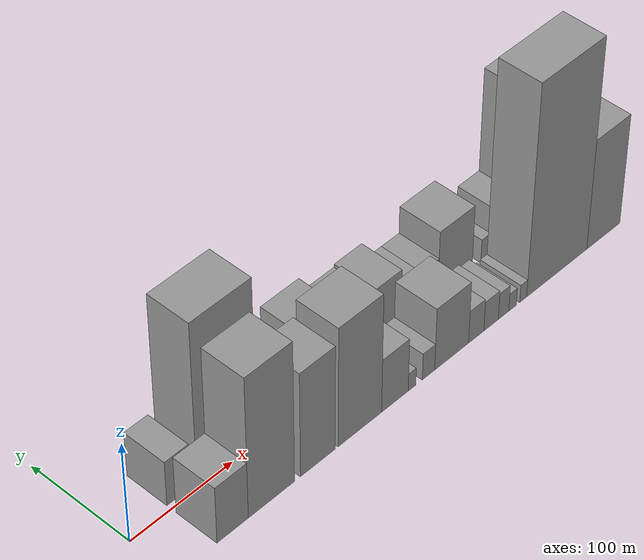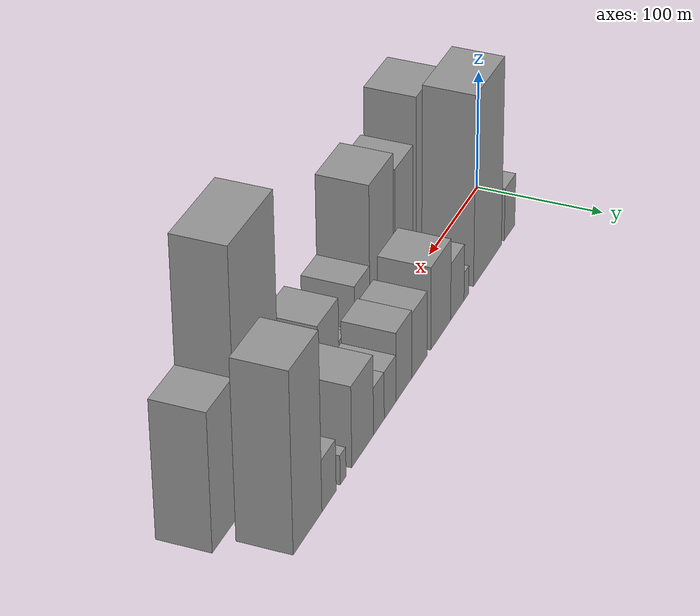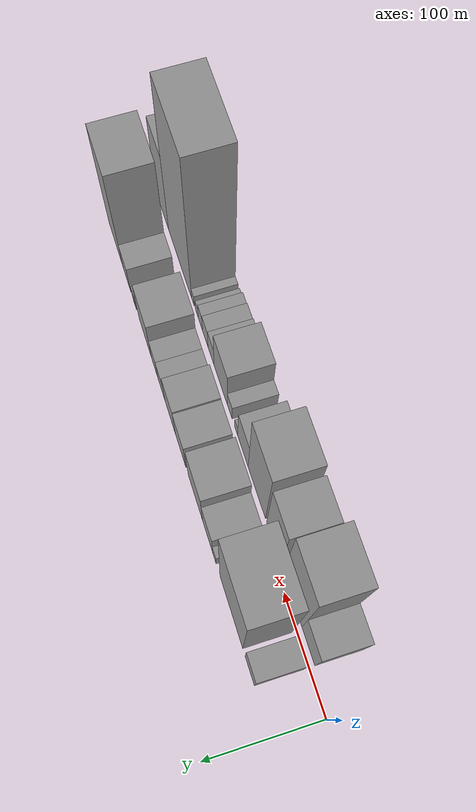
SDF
<sdf version="1.6">
 <world name="default">
  <scene>
   <sky><clouds><speed>12</speed></clouds></sky>
   <ambient>0.4 0.4 0.4 1</ambient>
   <background>0.7 0.7 0.7 1</background>
   <shadows>1</shadows>
  </scene>
  <gravity>0 0 -9.8066</gravity>
  <magnetic_field>6e-06 2.3e-05 -4.2e-05</magnetic_field>
  <physics default="0" name="default_physics" type="ode">
   <ode>
    <solver>
     <type>quick</type>
     <iters>10</iters>
     <sor>1.0</sor>
     <use_dynamic_moi_rescaling>0</use_dynamic_moi_rescaling>
    </solver>
    <constraints>
     <cfm>0</cfm>
     <erp>0.2</erp>
     <contact_max_correcting_vel>100</contact_max_correcting_vel>
     <contact_surface_layer>0.001</contact_surface_layer>
    </constraints>
   </ode>
   <max_step_size>0.004</max_step_size>
   <real_time_factor>1</real_time_factor>
   <real_time_update_rate>250</real_time_update_rate>
  </physics>
  <light name="sun" type="directional">
   <pose>0 0 10 0 0 0</pose>
   <diffuse>0.8 0.8 0.8 1</diffuse>
   <specular>0.2 0.2 0.2 1</specular>
   <attenuation>
    <range>1000</range>
    <constant>0.9</constant>
    <linear>0.01</linear>
    <quadratic>0.001</quadratic>
   </attenuation>
   <direction>-0.5 0.1 -0.9</direction>
  </light>
  <model name="building_1">
   <static>1</static>
   <pose>51.5358 24.5000 0 0.000000 0.000000 1.570796</pose>
   <link name="link">
    <pose>0 0 22.50 0 0 0</pose>
    <collision name="collision"><geometry><box><size>40.0000 23.0716 45.0000</size></box></geometry></collision>
    <visual name="visual">
     <cast_shadows>0</cast_shadows>
     <geometry><box><size>40.0000 23.0716 45.0000</size></box></geometry>
     <material>
      <script>
       <uri>model://grey_wall/materials/scripts</uri>
       <uri>model://grey_wall/materials/textures</uri>
       <name>vrc/grey_wall</name>
      </script>
     </material>
    </visual>
   </link>
  </model>
  <model name="building_2">
   <static>1</static>
   <pose>98.5969 24.5000 0 0.000000 0.000000 1.570796</pose>
   <link name="link">
    <pose>0 0 79.50 0 0 0</pose>
    <collision name="collision"><geometry><box><size>40.0000 59.0504 159.0000</size></box></geometry></collision>
    <visual name="visual">
     <cast_shadows>0</cast_shadows>
     <geometry><box><size>40.0000 59.0504 159.0000</size></box></geometry>
     <material>
      <script>
       <uri>model://grey_wall/materials/scripts</uri>
       <uri>model://grey_wall/materials/textures</uri>
       <name>vrc/grey_wall</name>
      </script>
     </material>
    </visual>
   </link>
  </model>
  <model name="building_3">
   <static>1</static>
   <pose>142.9371 24.5000 0 0.000000 0.000000 1.570796</pose>
   <link name="link">
    <pose>0 0 12.00 0 0 0</pose>
    <collision name="collision"><geometry><box><size>40.0000 9.6301 24.0000</size></box></geometry></collision>
    <visual name="visual">
     <cast_shadows>0</cast_shadows>
     <geometry><box><size>40.0000 9.6301 24.0000</size></box></geometry>
     <material>
      <script>
       <uri>model://grey_wall/materials/scripts</uri>
       <uri>model://grey_wall/materials/textures</uri>
       <name>vrc/grey_wall</name>
      </script>
     </material>
    </visual>
   </link>
  </model>
  <model name="building_4">
   <static>1</static>
   <pose>161.3503 24.5000 0 0.000000 0.000000 1.570796</pose>
   <link name="link">
    <pose>0 0 24.00 0 0 0</pose>
    <collision name="collision"><geometry><box><size>40.0000 27.1963 48.0000</size></box></geometry></collision>
    <visual name="visual">
     <cast_shadows>0</cast_shadows>
     <geometry><box><size>40.0000 27.1963 48.0000</size></box></geometry>
     <material>
      <script>
       <uri>model://grey_wall/materials/scripts</uri>
       <uri>model://grey_wall/materials/textures</uri>
       <name>vrc/grey_wall</name>
      </script>
     </material>
    </visual>
   </link>
  </model>
  <model name="building_5">
   <static>1</static>
   <pose>194.6820 24.5000 0 0.000000 0.000000 1.570796</pose>
   <link name="link">
    <pose>0 0 34.50 0 0 0</pose>
    <collision name="collision"><geometry><box><size>40.0000 39.4672 69.0000</size></box></geometry></collision>
    <visual name="visual">
     <cast_shadows>0</cast_shadows>
     <geometry><box><size>40.0000 39.4672 69.0000</size></box></geometry>
     <material>
      <script>
       <uri>model://grey_wall/materials/scripts</uri>
       <uri>model://grey_wall/materials/textures</uri>
       <name>vrc/grey_wall</name>
      </script>
     </material>
    </visual>
   </link>
  </model>
  <model name="building_6">
   <static>1</static>
   <pose>236.3501 24.5000 0 0.000000 0.000000 1.570796</pose>
   <link name="link">
    <pose>0 0 27.00 0 0 0</pose>
    <collision name="collision"><geometry><box><size>40.0000 29.8691 54.0000</size></box></geometry></collision>
    <visual name="visual">
     <cast_shadows>0</cast_shadows>
     <geometry><box><size>40.0000 29.8691 54.0000</size></box></geometry>
     <material>
      <script>
       <uri>model://grey_wall/materials/scripts</uri>
       <uri>model://grey_wall/materials/textures</uri>
       <name>vrc/grey_wall</name>
      </script>
     </material>
    </visual>
   </link>
  </model>
  <model name="building_7">
   <static>1</static>
   <pose>266.1122 24.5000 0 0.000000 0.000000 1.570796</pose>
   <link name="link">
    <pose>0 0 28.50 0 0 0</pose>
    <collision name="collision"><geometry><box><size>40.0000 29.6551 57.0000</size></box></geometry></collision>
    <visual name="visual">
     <cast_shadows>0</cast_shadows>
     <geometry><box><size>40.0000 29.6551 57.0000</size></box></geometry>
     <material>
      <script>
       <uri>model://grey_wall/materials/scripts</uri>
       <uri>model://grey_wall/materials/textures</uri>
       <name>vrc/grey_wall</name>
      </script>
     </material>
    </visual>
   </link>
  </model>
  <model name="building_8">
   <static>1</static>
   <pose>291.7411 24.5000 0 0.000000 0.000000 1.570796</pose>
   <link name="link">
    <pose>0 0 19.50 0 0 0</pose>
    <collision name="collision"><geometry><box><size>40.0000 21.6028 39.0000</size></box></geometry></collision>
    <visual name="visual">
     <cast_shadows>0</cast_shadows>
     <geometry><box><size>40.0000 21.6028 39.0000</size></box></geometry>
     <material>
      <script>
       <uri>model://grey_wall/materials/scripts</uri>
       <uri>model://grey_wall/materials/textures</uri>
       <name>vrc/grey_wall</name>
      </script>
     </material>
    </visual>
   </link>
  </model>
  <model name="building_9">
   <static>1</static>
   <pose>312.2978 24.5000 0 0.000000 0.000000 1.570796</pose>
   <link name="link">
    <pose>0 0 19.50 0 0 0</pose>
    <collision name="collision"><geometry><box><size>40.0000 19.5107 39.0000</size></box></geometry></collision>
    <visual name="visual">
     <cast_shadows>0</cast_shadows>
     <geometry><box><size>40.0000 19.5107 39.0000</size></box></geometry>
     <material>
      <script>
       <uri>model://grey_wall/materials/scripts</uri>
       <uri>model://grey_wall/materials/textures</uri>
       <name>vrc/grey_wall</name>
      </script>
     </material>
    </visual>
   </link>
  </model>
  <model name="building_10">
   <static>1</static>
   <pose>341.4970 24.5000 0 0.000000 0.000000 1.570796</pose>
   <link name="link">
    <pose>0 0 33.00 0 0 0</pose>
    <collision name="collision"><geometry><box><size>40.0000 38.8877 66.0000</size></box></geometry></collision>
    <visual name="visual">
     <cast_shadows>0</cast_shadows>
     <geometry><box><size>40.0000 38.8877 66.0000</size></box></geometry>
     <material>
      <script>
       <uri>model://grey_wall/materials/scripts</uri>
       <uri>model://grey_wall/materials/textures</uri>
       <name>vrc/grey_wall</name>
      </script>
     </material>
    </visual>
   </link>
  </model>
  <model name="building_11">
   <static>1</static>
   <pose>376.0134 24.5000 0 0.000000 0.000000 1.570796</pose>
   <link name="link">
    <pose>0 0 12.00 0 0 0</pose>
    <collision name="collision"><geometry><box><size>40.0000 10.1450 24.0000</size></box></geometry></collision>
    <visual name="visual">
     <cast_shadows>0</cast_shadows>
     <geometry><box><size>40.0000 10.1450 24.0000</size></box></geometry>
     <material>
      <script>
       <uri>model://grey_wall/materials/scripts</uri>
       <uri>model://grey_wall/materials/textures</uri>
       <name>vrc/grey_wall</name>
      </script>
     </material>
    </visual>
   </link>
  </model>
  <model name="building_12">
   <static>1</static>
   <pose>400.3175 24.5000 0 0.000000 0.000000 1.570796</pose>
   <link name="link">
    <pose>0 0 21.00 0 0 0</pose>
    <collision name="collision"><geometry><box><size>40.0000 24.4632 42.0000</size></box></geometry></collision>
    <visual name="visual">
     <cast_shadows>0</cast_shadows>
     <geometry><box><size>40.0000 24.4632 42.0000</size></box></geometry>
     <material>
      <script>
       <uri>model://grey_wall/materials/scripts</uri>
       <uri>model://grey_wall/materials/textures</uri>
       <name>vrc/grey_wall</name>
      </script>
     </material>
    </visual>
   </link>
  </model>
  <model name="building_13">
   <static>1</static>
   <pose>436.4286 24.5000 0 0.000000 0.000000 1.570796</pose>
   <link name="link">
    <pose>0 0 72.00 0 0 0</pose>
    <collision name="collision"><geometry><box><size>40.0000 47.7590 144.0000</size></box></geometry></collision>
    <visual name="visual">
     <cast_shadows>0</cast_shadows>
     <geometry><box><size>40.0000 47.7590 144.0000</size></box></geometry>
     <material>
      <script>
       <uri>model://grey_wall/materials/scripts</uri>
       <uri>model://grey_wall/materials/textures</uri>
       <name>vrc/grey_wall</name>
      </script>
     </material>
    </visual>
   </link>
  </model>
  <model name="building_14">
   <static>1</static>
   <pose>55.2883 -24.5000 0 0.000000 0.000000 1.570796</pose>
   <link name="link">
    <pose>0 0 28.50 0 0 0</pose>
    <collision name="collision"><geometry><box><size>40.0000 30.5766 57.0000</size></box></geometry></collision>
    <visual name="visual">
     <cast_shadows>0</cast_shadows>
     <geometry><box><size>40.0000 30.5766 57.0000</size></box></geometry>
     <material>
      <script>
       <uri>model://grey_wall/materials/scripts</uri>
       <uri>model://grey_wall/materials/textures</uri>
       <name>vrc/grey_wall</name>
      </script>
     </material>
    </visual>
   </link>
  </model>
  <model name="building_15">
   <static>1</static>
   <pose>93.5635 -24.5000 0 0.000000 0.000000 1.570796</pose>
   <link name="link">
    <pose>0 0 70.50 0 0 0</pose>
    <collision name="collision"><geometry><box><size>40.0000 45.9738 141.0000</size></box></geometry></collision>
    <visual name="visual">
     <cast_shadows>0</cast_shadows>
     <geometry><box><size>40.0000 45.9738 141.0000</size></box></geometry>
     <material>
      <script>
       <uri>model://grey_wall/materials/scripts</uri>
       <uri>model://grey_wall/materials/textures</uri>
       <name>vrc/grey_wall</name>
      </script>
     </material>
    </visual>
   </link>
  </model>
  <model name="building_16">
   <static>1</static>
   <pose>140.3128 -24.5000 0 0.000000 0.000000 1.570796</pose>
   <link name="link">
    <pose>0 0 52.50 0 0 0</pose>
    <collision name="collision"><geometry><box><size>40.0000 35.5249 105.0000</size></box></geometry></collision>
    <visual name="visual">
     <cast_shadows>0</cast_shadows>
     <geometry><box><size>40.0000 35.5249 105.0000</size></box></geometry>
     <material>
      <script>
       <uri>model://grey_wall/materials/scripts</uri>
       <uri>model://grey_wall/materials/textures</uri>
       <name>vrc/grey_wall</name>
      </script>
     </material>
    </visual>
   </link>
  </model>
  <model name="building_17">
   <static>1</static>
   <pose>183.7733 -24.5000 0 0.000000 0.000000 1.570796</pose>
   <link name="link">
    <pose>0 0 60.00 0 0 0</pose>
    <collision name="collision"><geometry><box><size>40.0000 45.3960 120.0000</size></box></geometry></collision>
    <visual name="visual">
     <cast_shadows>0</cast_shadows>
     <geometry><box><size>40.0000 45.3960 120.0000</size></box></geometry>
     <material>
      <script>
       <uri>model://grey_wall/materials/scripts</uri>
       <uri>model://grey_wall/materials/textures</uri>
       <name>vrc/grey_wall</name>
      </script>
     </material>
    </visual>
   </link>
  </model>
  <model name="building_18">
   <static>1</static>
   <pose>220.6439 -24.5000 0 0.000000 0.000000 1.570796</pose>
   <link name="link">
    <pose>0 0 27.00 0 0 0</pose>
    <collision name="collision"><geometry><box><size>40.0000 28.3452 54.0000</size></box></geometry></collision>
    <visual name="visual">
     <cast_shadows>0</cast_shadows>
     <geometry><box><size>40.0000 28.3452 54.0000</size></box></geometry>
     <material>
      <script>
       <uri>model://grey_wall/materials/scripts</uri>
       <uri>model://grey_wall/materials/textures</uri>
       <name>vrc/grey_wall</name>
      </script>
     </material>
    </visual>
   </link>
  </model>
  <model name="building_19">
   <static>1</static>
   <pose>238.9677 -24.5000 0 0.000000 0.000000 1.570796</pose>
   <link name="link">
    <pose>0 0 9.00 0 0 0</pose>
    <collision name="collision"><geometry><box><size>40.0000 8.3023 18.0000</size></box></geometry></collision>
    <visual name="visual">
     <cast_shadows>0</cast_shadows>
     <geometry><box><size>40.0000 8.3023 18.0000</size></box></geometry>
     <material>
      <script>
       <uri>model://grey_wall/materials/scripts</uri>
       <uri>model://grey_wall/materials/textures</uri>
       <name>vrc/grey_wall</name>
      </script>
     </material>
    </visual>
   </link>
  </model>
  <model name="building_20">
   <static>1</static>
   <pose>256.8663 -24.5000 0 0.000000 0.000000 1.570796</pose>
   <link name="link">
    <pose>0 0 13.50 0 0 0</pose>
    <collision name="collision"><geometry><box><size>40.0000 13.4949 27.0000</size></box></geometry></collision>
    <visual name="visual">
     <cast_shadows>0</cast_shadows>
     <geometry><box><size>40.0000 13.4949 27.0000</size></box></geometry>
     <material>
      <script>
       <uri>model://grey_wall/materials/scripts</uri>
       <uri>model://grey_wall/materials/textures</uri>
       <name>vrc/grey_wall</name>
      </script>
     </material>
    </visual>
   </link>
  </model>
  <model name="building_21">
   <static>1</static>
   <pose>282.2674 -24.5000 0 0.000000 0.000000 1.570796</pose>
   <link name="link">
    <pose>0 0 31.50 0 0 0</pose>
    <collision name="collision"><geometry><box><size>40.0000 37.3071 63.0000</size></box></geometry></collision>
    <visual name="visual">
     <cast_shadows>0</cast_shadows>
     <geometry><box><size>40.0000 37.3071 63.0000</size></box></geometry>
     <material>
      <script>
       <uri>model://grey_wall/materials/scripts</uri>
       <uri>model://grey_wall/materials/textures</uri>
       <name>vrc/grey_wall</name>
      </script>
     </material>
    </visual>
   </link>
  </model>
  <model name="building_22">
   <static>1</static>
   <pose>309.4925 -24.5000 0 0.000000 0.000000 1.570796</pose>
   <link name="link">
    <pose>0 0 16.50 0 0 0</pose>
    <collision name="collision"><geometry><box><size>40.0000 17.1432 33.0000</size></box></geometry></collision>
    <visual name="visual">
     <cast_shadows>0</cast_shadows>
     <geometry><box><size>40.0000 17.1432 33.0000</size></box></geometry>
     <material>
      <script>
       <uri>model://grey_wall/materials/scripts</uri>
       <uri>model://grey_wall/materials/textures</uri>
       <name>vrc/grey_wall</name>
      </script>
     </material>
    </visual>
   </link>
  </model>
  <model name="building_23">
   <static>1</static>
   <pose>326.2330 -24.5000 0 0.000000 0.000000 1.570796</pose>
   <link name="link">
    <pose>0 0 15.00 0 0 0</pose>
    <collision name="collision"><geometry><box><size>40.0000 16.3376 30.0000</size></box></geometry></collision>
    <visual name="visual">
     <cast_shadows>0</cast_shadows>
     <geometry><box><size>40.0000 16.3376 30.0000</size></box></geometry>
     <material>
      <script>
       <uri>model://grey_wall/materials/scripts</uri>
       <uri>model://grey_wall/materials/textures</uri>
       <name>vrc/grey_wall</name>
      </script>
     </material>
    </visual>
   </link>
  </model>
  <model name="building_24">
   <static>1</static>
   <pose>340.3530 -24.5000 0 0.000000 0.000000 1.570796</pose>
   <link name="link">
    <pose>0 0 13.50 0 0 0</pose>
    <collision name="collision"><geometry><box><size>40.0000 11.9024 27.0000</size></box></geometry></collision>
    <visual name="visual">
     <cast_shadows>0</cast_shadows>
     <geometry><box><size>40.0000 11.9024 27.0000</size></box></geometry>
     <material>
      <script>
       <uri>model://grey_wall/materials/scripts</uri>
       <uri>model://grey_wall/materials/textures</uri>
       <name>vrc/grey_wall</name>
      </script>
     </material>
    </visual>
   </link>
  </model>
  <model name="building_25">
   <static>1</static>
   <pose>350.5895 -24.5000 0 0.000000 0.000000 1.570796</pose>
   <link name="link">
    <pose>0 0 9.00 0 0 0</pose>
    <collision name="collision"><geometry><box><size>40.0000 8.5706 18.0000</size></box></geometry></collision>
    <visual name="visual">
     <cast_shadows>0</cast_shadows>
     <geometry><box><size>40.0000 8.5706 18.0000</size></box></geometry>
     <material>
      <script>
       <uri>model://grey_wall/materials/scripts</uri>
       <uri>model://grey_wall/materials/textures</uri>
       <name>vrc/grey_wall</name>
      </script>
     </material>
    </visual>
   </link>
  </model>
  <model name="building_26">
   <static>1</static>
   <pose>362.8342 -24.5000 0 0.000000 0.000000 1.570796</pose>
   <link name="link">
    <pose>0 0 9.00 0 0 0</pose>
    <collision name="collision"><geometry><box><size>40.0000 7.9188 18.0000</size></box></geometry></collision>
    <visual name="visual">
     <cast_shadows>0</cast_shadows>
     <geometry><box><size>40.0000 7.9188 18.0000</size></box></geometry>
     <material>
      <script>
       <uri>model://grey_wall/materials/scripts</uri>
       <uri>model://grey_wall/materials/textures</uri>
       <name>vrc/grey_wall</name>
      </script>
     </material>
    </visual>
   </link>
  </model>
  <model name="building_27">
   <static>1</static>
   <pose>402.1028 -24.5000 0 0.000000 0.000000 1.570796</pose>
   <link name="link">
    <pose>0 0 105.00 0 0 0</pose>
    <collision name="collision"><geometry><box><size>40.0000 70.6184 210.0000</size></box></geometry></collision>
    <visual name="visual">
     <cast_shadows>0</cast_shadows>
     <geometry><box><size>40.0000 70.6184 210.0000</size></box></geometry>
     <material>
      <script>
       <uri>model://grey_wall/materials/scripts</uri>
       <uri>model://grey_wall/materials/textures</uri>
       <name>vrc/grey_wall</name>
      </script>
     </material>
    </visual>
   </link>
  </model>
  <model name="building_28">
   <static>1</static>
   <pose>457.3616 -24.5000 0 0.000000 0.000000 1.570796</pose>
   <link name="link">
    <pose>0 0 55.50 0 0 0</pose>
    <collision name="collision"><geometry><box><size>40.0000 39.8992 111.0000</size></box></geometry></collision>
    <visual name="visual">
     <cast_shadows>0</cast_shadows>
     <geometry><box><size>40.0000 39.8992 111.0000</size></box></geometry>
     <material>
      <script>
       <uri>model://grey_wall/materials/scripts</uri>
       <uri>model://grey_wall/materials/textures</uri>
       <name>vrc/grey_wall</name>
      </script>
     </material>
    </visual>
   </link>
  </model>
 </world>
</sdf>
